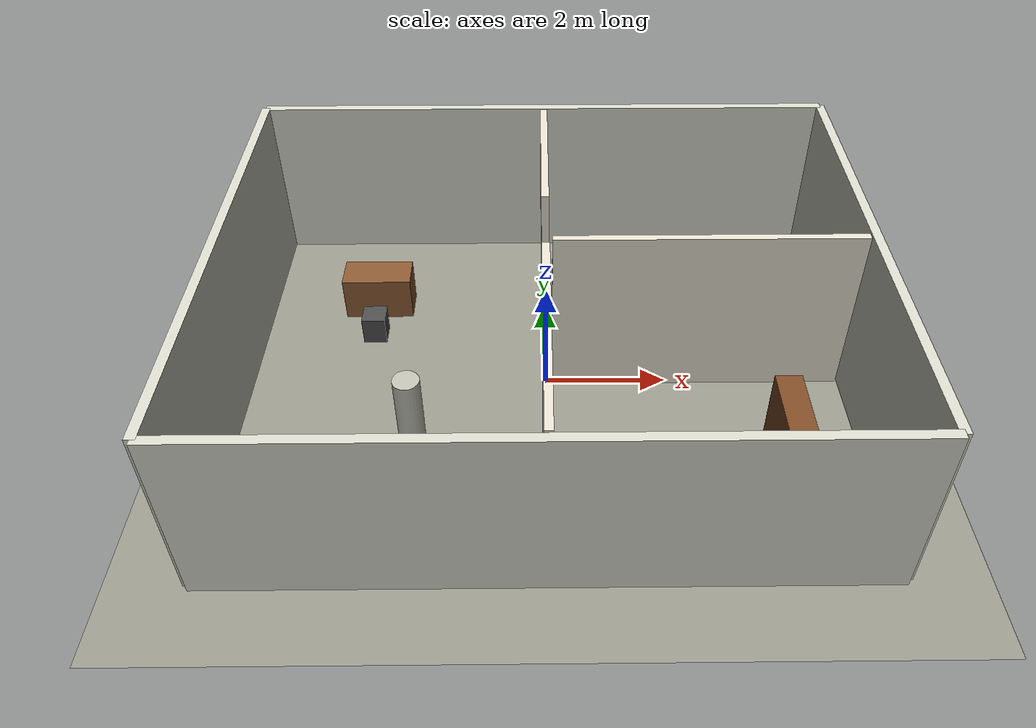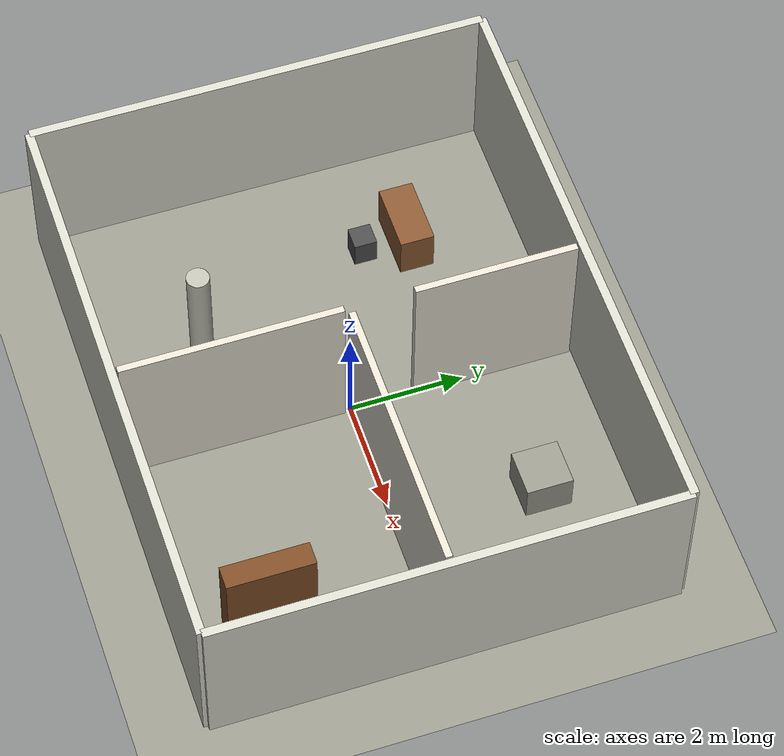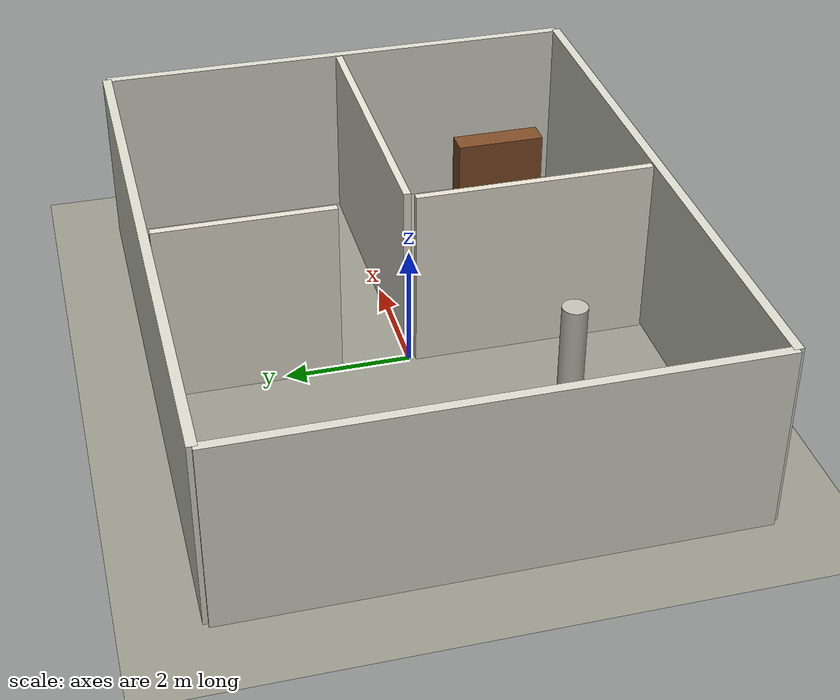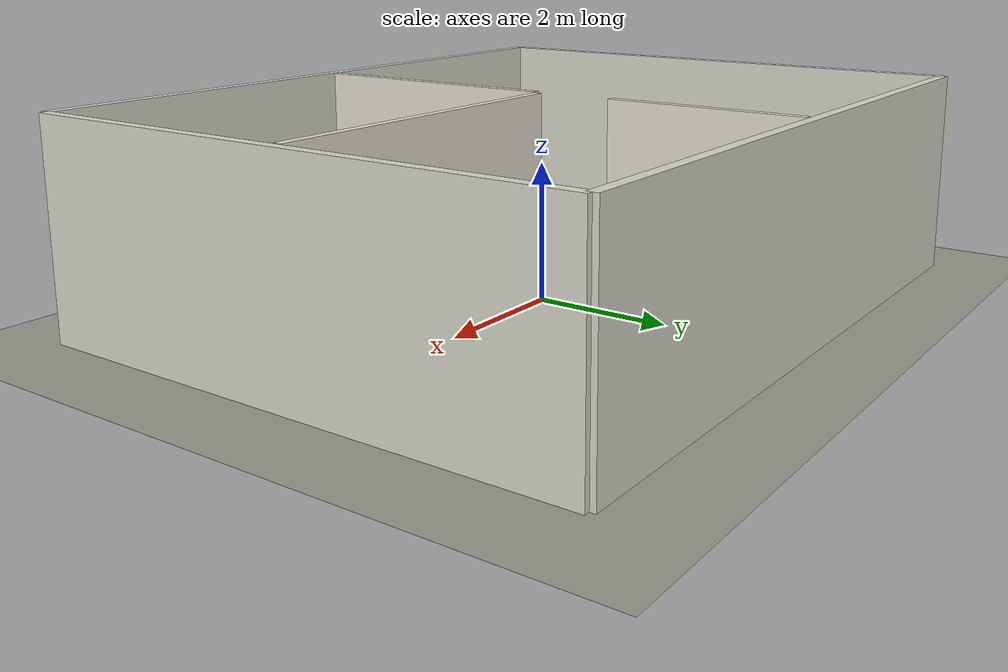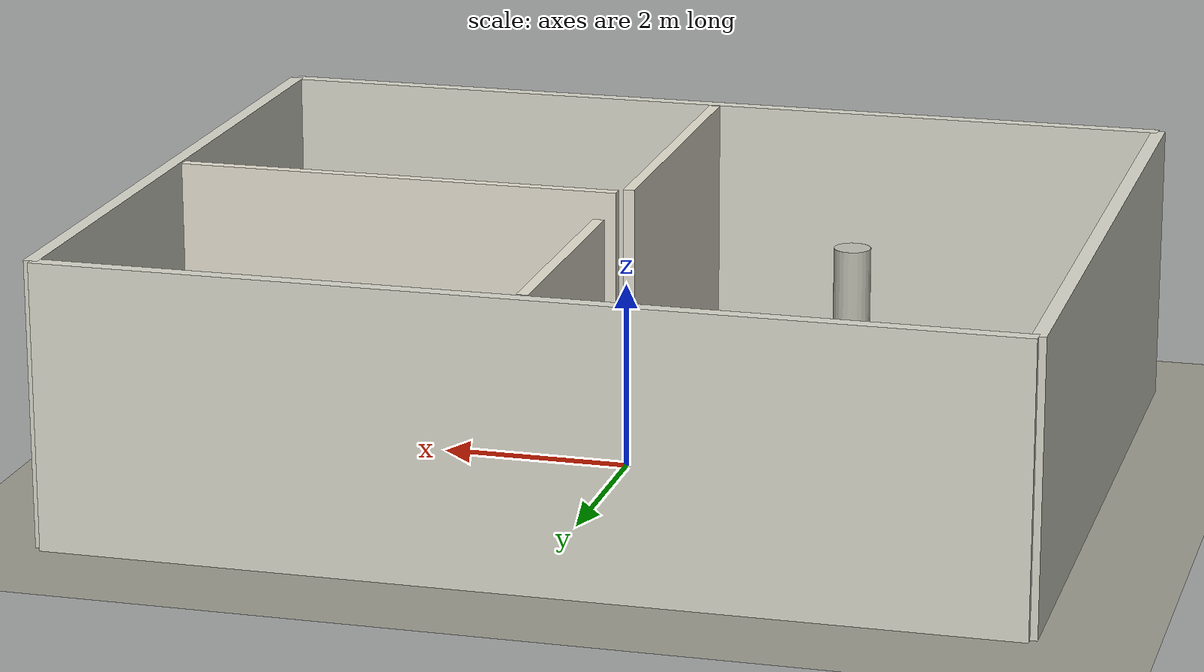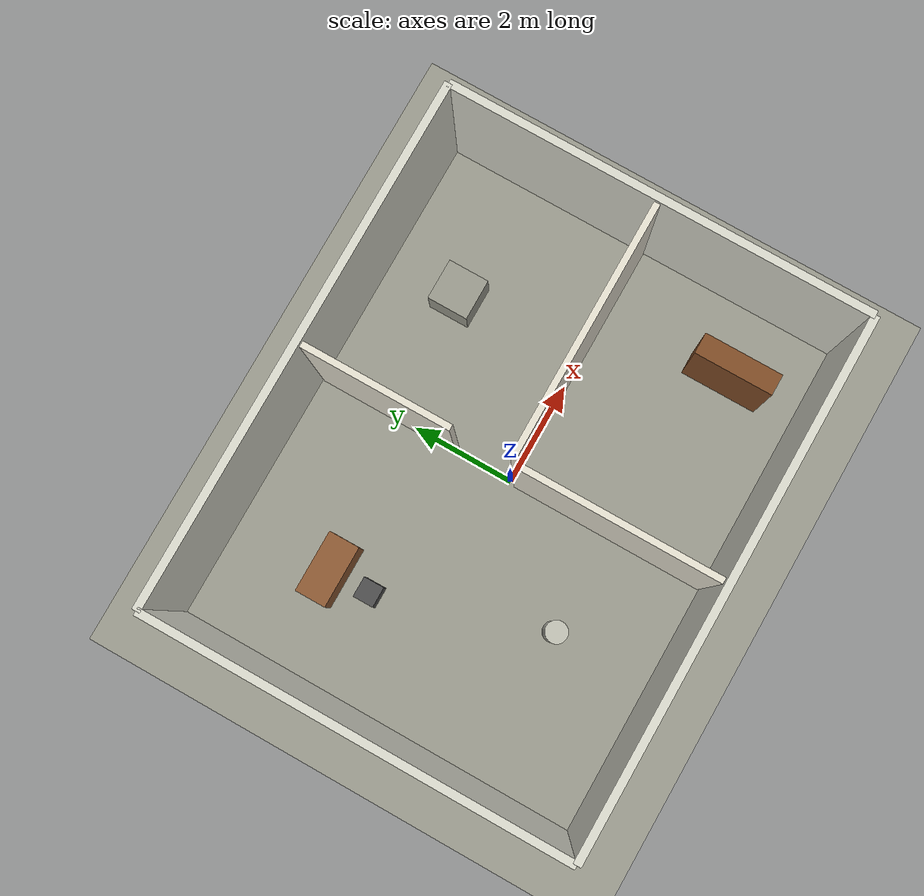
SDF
<?xml version="1.0" ?>
<!--
  Indoor office environment for SLAM testing.
  Features: multiple rooms, corridors, doors, furniture-like obstacles.
  Provides enough geometry for slam_toolbox to build a meaningful map.
-->
<sdf version="1.9">
  <world name="indoor_office">

    <!-- Physics -->
    <physics name="1ms" type="ignored">
      <max_step_size>0.001</max_step_size>
      <real_time_factor>1.0</real_time_factor>
    </physics>

    <!-- Required Gazebo plugins -->
    <plugin filename="libignition-gazebo-physics-system.so"
            name="ignition::gazebo::systems::Physics"/>
    <plugin filename="libignition-gazebo-user-commands-system.so"
            name="ignition::gazebo::systems::UserCommands"/>
    <plugin filename="libignition-gazebo-scene-broadcaster-system.so"
            name="ignition::gazebo::systems::SceneBroadcaster"/>
    <plugin filename="libignition-gazebo-sensors-system.so"
            name="ignition::gazebo::systems::Sensors">
      <render_engine>ogre</render_engine>
    </plugin>
    <plugin filename="libignition-gazebo-contact-system.so"
            name="ignition::gazebo::systems::Contact"/>

    <!-- Lighting -->
    <light type="directional" name="sun">
      <cast_shadows>true</cast_shadows>
      <pose>0 0 10 0 0 0</pose>
      <diffuse>0.9 0.9 0.9 1</diffuse>
      <specular>0.3 0.3 0.3 1</specular>
      <direction>-0.5 0.1 -0.9</direction>
    </light>

    <light type="point" name="ceiling_light_1">
      <pose>3 3 2.8 0 0 0</pose>
      <diffuse>0.8 0.8 0.7 1</diffuse>
      <attenuation>
        <range>15</range>
        <constant>0.3</constant>
        <linear>0.01</linear>
        <quadratic>0.001</quadratic>
      </attenuation>
    </light>

    <light type="point" name="ceiling_light_2">
      <pose>-3 -2 2.8 0 0 0</pose>
      <diffuse>0.8 0.8 0.7 1</diffuse>
      <attenuation>
        <range>15</range>
        <constant>0.3</constant>
        <linear>0.01</linear>
        <quadratic>0.001</quadratic>
      </attenuation>
    </light>

    <!-- Ground plane                             -->
    <model name="ground_plane">
      <static>true</static>
      <link name="link">
        <collision name="collision">
          <geometry>
            <plane>
              <normal>0 0 1</normal>
              <size>20 20</size>
            </plane>
          </geometry>
        </collision>
        <visual name="visual">
          <geometry>
            <plane>
              <normal>0 0 1</normal>
              <size>20 20</size>
            </plane>
          </geometry>
          <material>
            <ambient>0.6 0.6 0.55 1</ambient>
            <diffuse>0.6 0.6 0.55 1</diffuse>
          </material>
        </visual>
      </link>
    </model>

    <!-- Outer walls (10m x 8m room)              -->

    <!-- Wall: North -->
    <model name="wall_north">
      <static>true</static>
      <pose>0 4 1.5 0 0 0</pose>
      <link name="link">
        <collision name="collision">
          <geometry><box><size>10 0.15 3</size></box></geometry>
        </collision>
        <visual name="visual">
          <geometry><box><size>10 0.15 3</size></box></geometry>
          <material>
            <ambient>0.85 0.85 0.80 1</ambient>
            <diffuse>0.85 0.85 0.80 1</diffuse>
          </material>
        </visual>
      </link>
    </model>

    <!-- Wall: South -->
    <model name="wall_south">
      <static>true</static>
      <pose>0 -4 1.5 0 0 0</pose>
      <link name="link">
        <collision name="collision">
          <geometry><box><size>10 0.15 3</size></box></geometry>
        </collision>
        <visual name="visual">
          <geometry><box><size>10 0.15 3</size></box></geometry>
          <material>
            <ambient>0.85 0.85 0.80 1</ambient>
            <diffuse>0.85 0.85 0.80 1</diffuse>
          </material>
        </visual>
      </link>
    </model>

    <!-- Wall: East -->
    <model name="wall_east">
      <static>true</static>
      <pose>5 0 1.5 0 0 0</pose>
      <link name="link">
        <collision name="collision">
          <geometry><box><size>0.15 8 3</size></box></geometry>
        </collision>
        <visual name="visual">
          <geometry><box><size>0.15 8 3</size></box></geometry>
          <material>
            <ambient>0.85 0.85 0.80 1</ambient>
            <diffuse>0.85 0.85 0.80 1</diffuse>
          </material>
        </visual>
      </link>
    </model>

    <!-- Wall: West -->
    <model name="wall_west">
      <static>true</static>
      <pose>-5 0 1.5 0 0 0</pose>
      <link name="link">
        <collision name="collision">
          <geometry><box><size>0.15 8 3</size></box></geometry>
        </collision>
        <visual name="visual">
          <geometry><box><size>0.15 8 3</size></box></geometry>
          <material>
            <ambient>0.85 0.85 0.80 1</ambient>
            <diffuse>0.85 0.85 0.80 1</diffuse>
          </material>
        </visual>
      </link>
    </model>

    <!-- Interior walls (create rooms)            -->

    <!-- Divider wall: creates left room (with doorway gap) -->
    <!-- Upper section -->
    <model name="divider_1_upper">
      <static>true</static>
      <pose>0 2.5 1.5 0 0 0</pose>
      <link name="link">
        <collision name="collision">
          <geometry><box><size>0.12 2.8 3</size></box></geometry>
        </collision>
        <visual name="visual">
          <geometry><box><size>0.12 2.8 3</size></box></geometry>
          <material>
            <ambient>0.9 0.88 0.82 1</ambient>
            <diffuse>0.9 0.88 0.82 1</diffuse>
          </material>
        </visual>
      </link>
    </model>

    <!-- Lower section (gap = door between y=0.5 and y=1.5) -->
    <model name="divider_1_lower">
      <static>true</static>
      <pose>0 -2.0 1.5 0 0 0</pose>
      <link name="link">
        <collision name="collision">
          <geometry><box><size>0.12 3.8 3</size></box></geometry>
        </collision>
        <visual name="visual">
          <geometry><box><size>0.12 3.8 3</size></box></geometry>
          <material>
            <ambient>0.9 0.88 0.82 1</ambient>
            <diffuse>0.9 0.88 0.82 1</diffuse>
          </material>
        </visual>
      </link>
    </model>

    <!-- Corridor wall segment -->
    <model name="corridor_wall">
      <static>true</static>
      <pose>2.5 0 1.5 0 0 0</pose>
      <link name="link">
        <collision name="collision">
          <geometry><box><size>4.8 0.12 3</size></box></geometry>
        </collision>
        <visual name="visual">
          <geometry><box><size>4.8 0.12 3</size></box></geometry>
          <material>
            <ambient>0.9 0.88 0.82 1</ambient>
            <diffuse>0.9 0.88 0.82 1</diffuse>
          </material>
        </visual>
      </link>
    </model>

    <!-- Obstacles (furniture-like)               -->

    <!-- Desk in left room -->
    <model name="desk">
      <static>true</static>
      <pose>-3 2 0.4 0 0 0</pose>
      <link name="link">
        <collision name="collision">
          <geometry><box><size>1.2 0.6 0.8</size></box></geometry>
        </collision>
        <visual name="visual">
          <geometry><box><size>1.2 0.6 0.8</size></box></geometry>
          <material>
            <ambient>0.55 0.35 0.2 1</ambient>
            <diffuse>0.55 0.35 0.2 1</diffuse>
          </material>
        </visual>
      </link>
    </model>

    <!-- Chair -->
    <model name="chair">
      <static>true</static>
      <pose>-3 1.2 0.25 0 0 0</pose>
      <link name="link">
        <collision name="collision">
          <geometry><box><size>0.4 0.4 0.5</size></box></geometry>
        </collision>
        <visual name="visual">
          <geometry><box><size>0.4 0.4 0.5</size></box></geometry>
          <material>
            <ambient>0.3 0.3 0.3 1</ambient>
            <diffuse>0.3 0.3 0.3 1</diffuse>
          </material>
        </visual>
      </link>
    </model>

    <!-- Bookshelf in right room -->
    <model name="bookshelf">
      <static>true</static>
      <pose>3.5 -2.5 0.9 0 0 0</pose>
      <link name="link">
        <collision name="collision">
          <geometry><box><size>0.4 1.5 1.8</size></box></geometry>
        </collision>
        <visual name="visual">
          <geometry><box><size>0.4 1.5 1.8</size></box></geometry>
          <material>
            <ambient>0.5 0.3 0.15 1</ambient>
            <diffuse>0.5 0.3 0.15 1</diffuse>
          </material>
        </visual>
      </link>
    </model>

    <!-- Small table in corridor -->
    <model name="table_corridor">
      <static>true</static>
      <pose>2.5 2.5 0.35 0 0 0</pose>
      <link name="link">
        <collision name="collision">
          <geometry><box><size>0.8 0.8 0.7</size></box></geometry>
        </collision>
        <visual name="visual">
          <geometry><box><size>0.8 0.8 0.7</size></box></geometry>
          <material>
            <ambient>0.6 0.6 0.55 1</ambient>
            <diffuse>0.6 0.6 0.55 1</diffuse>
          </material>
        </visual>
      </link>
    </model>

    <!-- Column / pillar -->
    <model name="pillar">
      <static>true</static>
      <pose>-2 -2 1 0 0 0</pose>
      <link name="link">
        <collision name="collision">
          <geometry><cylinder><radius>0.2</radius><length>2.0</length></cylinder></geometry>
        </collision>
        <visual name="visual">
          <geometry><cylinder><radius>0.2</radius><length>2.0</length></cylinder></geometry>
          <material>
            <ambient>0.75 0.75 0.7 1</ambient>
            <diffuse>0.75 0.75 0.7 1</diffuse>
          </material>
        </visual>
      </link>
    </model>

  </world>
</sdf>
